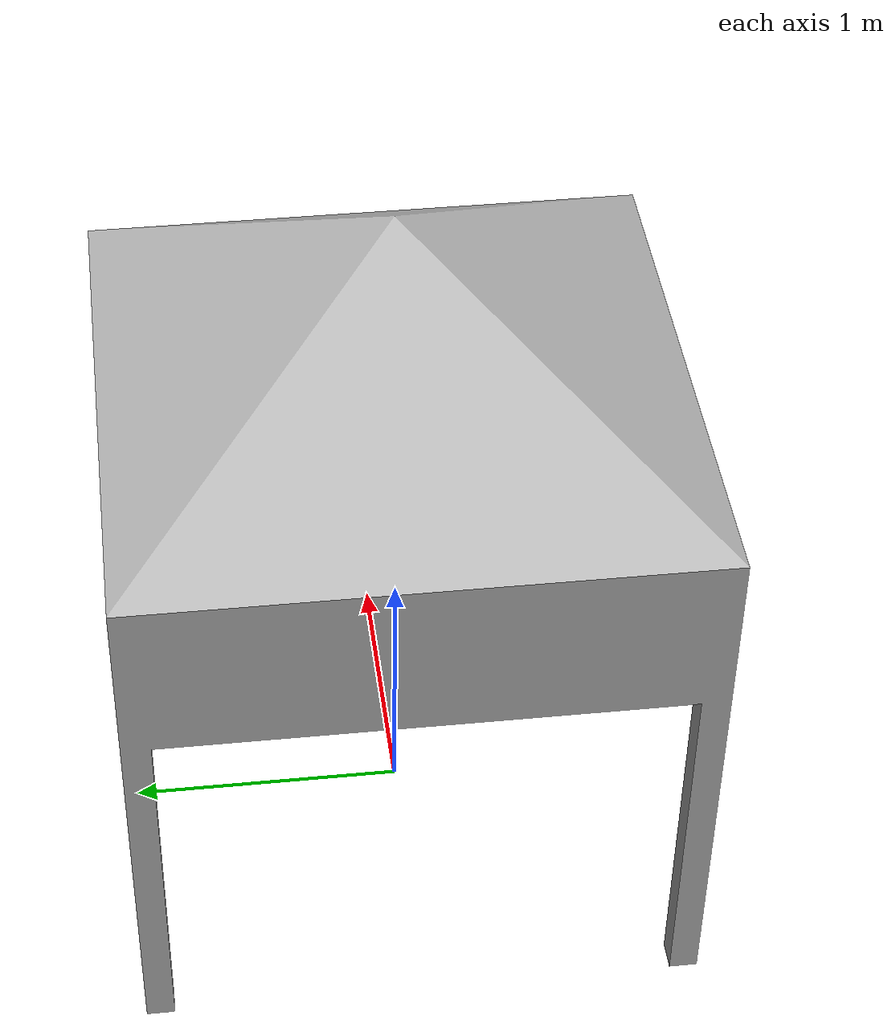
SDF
<?xml version='1.0'?>
<sdf version="1.4">
<model name="tent">
  <pose>0 0 0 0 0 0</pose>
  <static>true</static>
    <link name="link">
      <collision name="collision">
          <geometry>
            <mesh><uri>model://tent/meshes/tent.dae</uri></mesh>
          </geometry>
      </collision>
        <visual name="visual">
          <geometry>
            <mesh><uri>model://tent/meshes/tent.dae</uri></mesh>
          </geometry>
        </visual>
      </link>
  </model>
</sdf>
